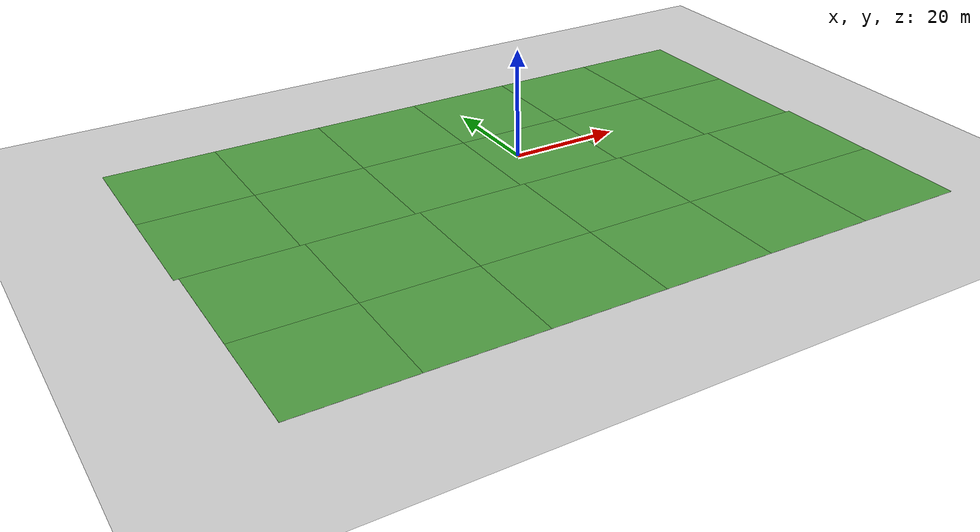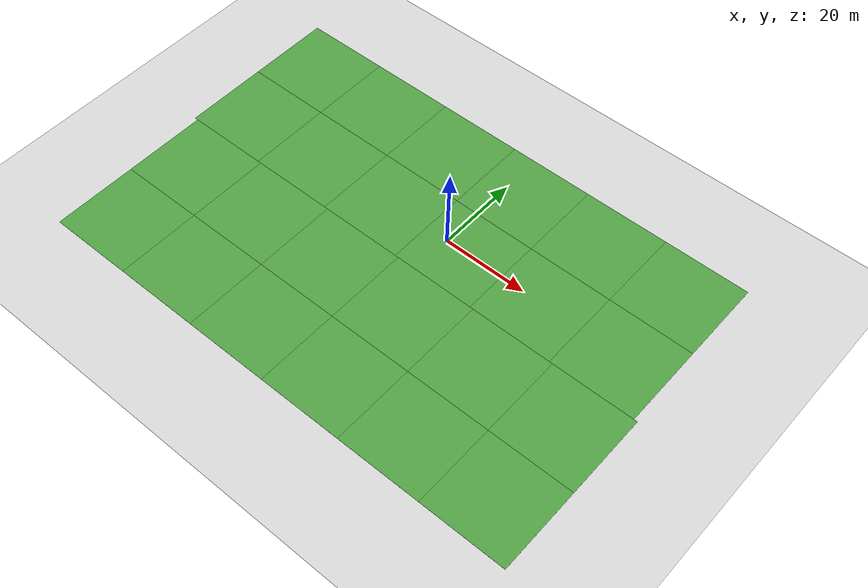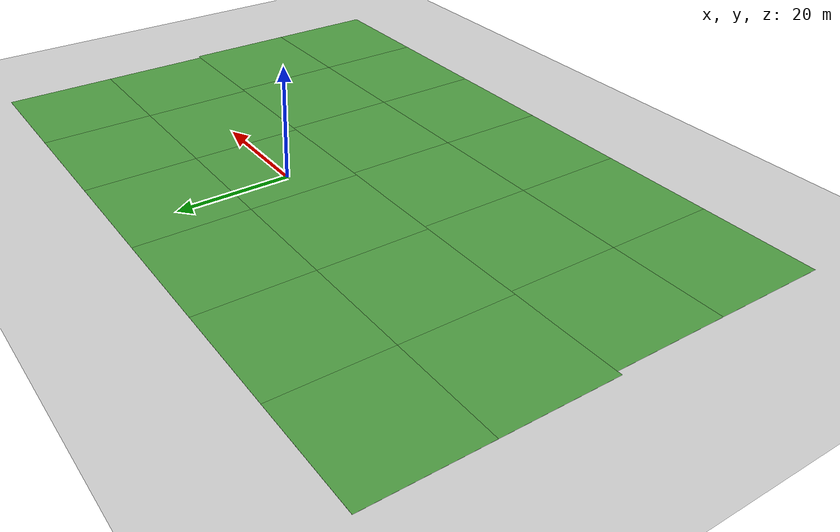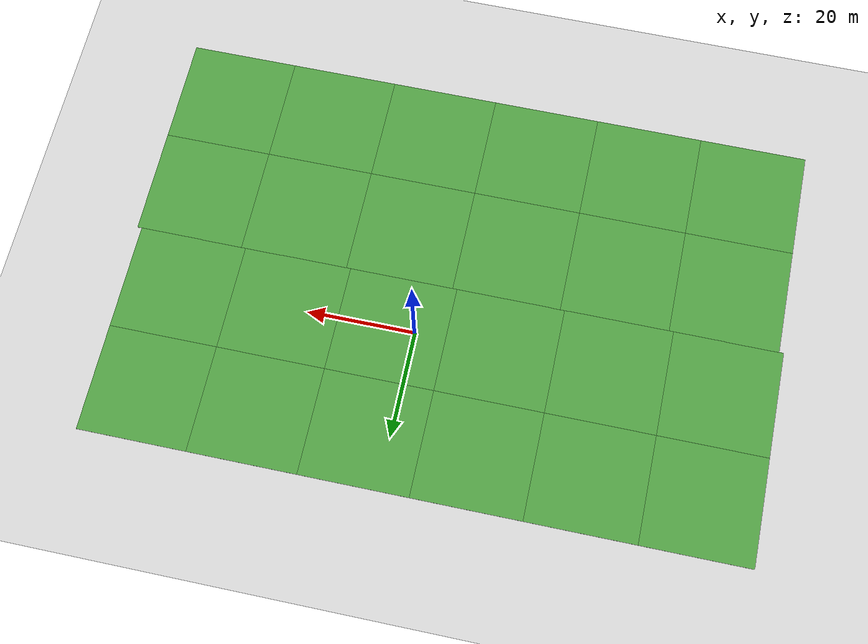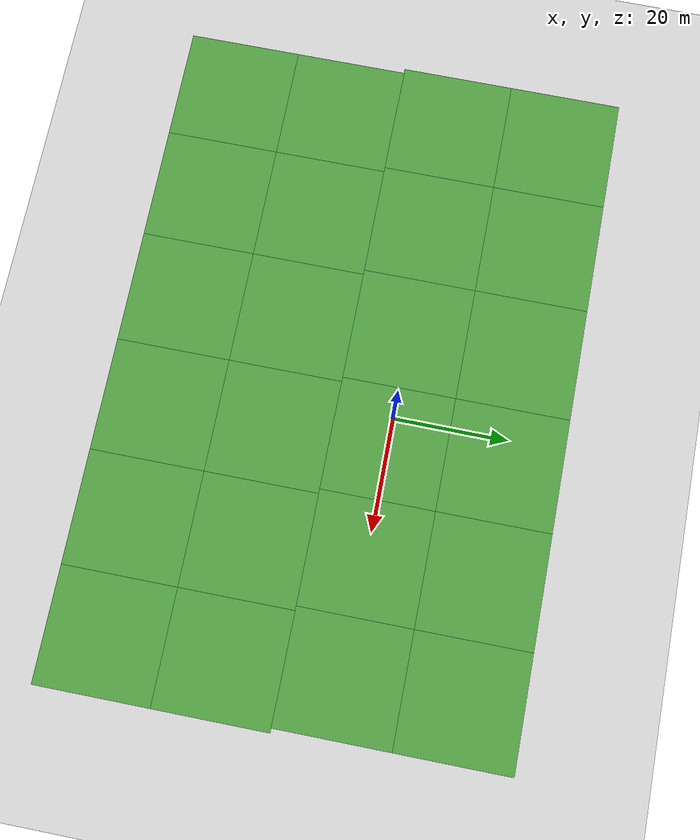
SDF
<sdf version="1.7">
 <world name="default">
  <plugin name="ros_interface_plugin" filename="librotors_gazebo_ros_interface_plugin.so"/>
  <light name="sun" type="directional">
   <pose>0 0 10 0 -0 0</pose>
   <diffuse>0.8 0.8 0.8 1</diffuse>
   <specular>0.2 0.2 0.2 1</specular>
   <attenuation>
    <range>1000</range>
    <constant>0.9</constant>
    <linear>0.01</linear>
    <quadratic>0.001</quadratic>
   </attenuation>
   <direction>-0.5 0.1 -0.9</direction>
   <spot><inner_angle>0</inner_angle><outer_angle>0</outer_angle><falloff>0</falloff></spot>
  </light>
  <model name="ground_plane">
   <static>1</static>
   <link name="link">
    <collision name="collision">
     <geometry><plane><normal>0 0 1</normal><size>100 100</size></plane></geometry>
     <surface><friction><ode><mu>100</mu><mu2>50</mu2></ode></friction></surface>
    </collision>
    <visual name="visual">
     <cast_shadows>0</cast_shadows>
     <geometry><plane><normal>0 0 1</normal><size>100 100</size></plane></geometry>
     <material>
      <script><uri>file://media/materials/scripts/gazebo.material</uri><name>Gazebo/Grey</name></script>
     </material>
    </visual>
    <velocity_decay><linear>0</linear><angular>0</angular></velocity_decay>
   </link>
  </model>
  <physics name="default_physics" default="0" type="ode">
   <max_step_size>0.001</max_step_size>
   <real_time_factor>1</real_time_factor>
   <real_time_update_rate>1000</real_time_update_rate>
  </physics>
  <scene><ambient>0.4 0.4 0.4 1</ambient><background>0.7 0.7 0.7 1</background><shadows>1</shadows></scene>
  <gravity>0 0 -9.8</gravity>
  <magnetic_field>6e-06 2.3e-05 -4.2e-05</magnetic_field>
  <atmosphere type="adiabatic"/>
  <spherical_coordinates>
   <surface_model>EARTH_WGS84</surface_model>
   <latitude_deg>0</latitude_deg>
   <longitude_deg>0</longitude_deg>
   <elevation>0</elevation>
   <heading_deg>0</heading_deg>
  </spherical_coordinates>
  <model name="grass_plane">
   <static>1</static>
   <link name="link">
    <collision name="collision">
     <geometry><plane><normal>0 0 1</normal><size>500 500</size></plane></geometry>
     <surface><friction><ode><mu>0.5</mu><mu2>0.5</mu2></ode></friction></surface>
    </collision>
    <visual name="visual_0">
     <pose>-40 -40 0 0 -0 0</pose>
     <cast_shadows>0</cast_shadows>
     <geometry><plane><normal>0 0 1</normal><size>20 20</size></plane></geometry>
     <material>
      <script>
       <uri>model://grass_plane/materials/scripts</uri>
       <uri>model://grass_plane/materials/textures</uri>
       <name>vrc/grass</name>
      </script>
     </material>
    </visual>
    <visual name="visual_1">
     <pose>-20 -40 0 0 -0 0</pose>
     <cast_shadows>0</cast_shadows>
     <geometry><plane><normal>0 0 1</normal><size>20 20</size></plane></geometry>
     <material>
      <script>
       <uri>model://grass_plane/materials/scripts</uri>
       <uri>model://grass_plane/materials/textures</uri>
       <name>vrc/grass</name>
      </script>
     </material>
    </visual>
    <visual name="visual_2">
     <pose>0 -40 0 0 -0 0</pose>
     <cast_shadows>0</cast_shadows>
     <geometry><plane><normal>0 0 1</normal><size>20 20</size></plane></geometry>
     <material>
      <script>
       <uri>model://grass_plane/materials/scripts</uri>
       <uri>model://grass_plane/materials/textures</uri>
       <name>vrc/grass</name>
      </script>
     </material>
    </visual>
    <visual name="visual_3">
     <pose>20 -40 0 0 -0 0</pose>
     <cast_shadows>0</cast_shadows>
     <geometry><plane><normal>0 0 1</normal><size>20 20</size></plane></geometry>
     <material>
      <script>
       <uri>model://grass_plane/materials/scripts</uri>
       <uri>model://grass_plane/materials/textures</uri>
       <name>vrc/grass</name>
      </script>
     </material>
    </visual>
    <visual name="visual_4">
     <pose>40 -40 0 0 -0 0</pose>
     <cast_shadows>0</cast_shadows>
     <geometry><plane><normal>0 0 1</normal><size>20 20</size></plane></geometry>
     <material>
      <script>
       <uri>model://grass_plane/materials/scripts</uri>
       <uri>model://grass_plane/materials/textures</uri>
       <name>vrc/grass</name>
      </script>
     </material>
    </visual>
    <visual name="visual_5">
     <pose>60 -40 0 0 -0 0</pose>
     <cast_shadows>0</cast_shadows>
     <geometry><plane><normal>0 0 1</normal><size>20 20</size></plane></geometry>
     <material>
      <script>
       <uri>model://grass_plane/materials/scripts</uri>
       <uri>model://grass_plane/materials/textures</uri>
       <name>vrc/grass</name>
      </script>
     </material>
    </visual>
    <visual name="visual_6">
     <pose>-40 -20 0 0 -0 0</pose>
     <cast_shadows>0</cast_shadows>
     <geometry><plane><normal>0 0 1</normal><size>20 20</size></plane></geometry>
     <material>
      <script>
       <uri>model://grass_plane/materials/scripts</uri>
       <uri>model://grass_plane/materials/textures</uri>
       <name>vrc/grass</name>
      </script>
     </material>
    </visual>
    <visual name="visual_7">
     <pose>-20 -20 0 0 -0 0</pose>
     <cast_shadows>0</cast_shadows>
     <geometry><plane><normal>0 0 1</normal><size>20 20</size></plane></geometry>
     <material>
      <script>
       <uri>model://grass_plane/materials/scripts</uri>
       <uri>model://grass_plane/materials/textures</uri>
       <name>vrc/grass</name>
      </script>
     </material>
    </visual>
    <visual name="visual_8">
     <pose>0 -20 0 0 -0 0</pose>
     <cast_shadows>0</cast_shadows>
     <geometry><plane><normal>0 0 1</normal><size>20 20</size></plane></geometry>
     <material>
      <script>
       <uri>model://grass_plane/materials/scripts</uri>
       <uri>model://grass_plane/materials/textures</uri>
       <name>vrc/grass</name>
      </script>
     </material>
    </visual>
    <visual name="visual_9">
     <pose>20 -20 0 0 -0 0</pose>
     <cast_shadows>0</cast_shadows>
     <geometry><plane><normal>0 0 1</normal><size>20 20</size></plane></geometry>
     <material>
      <script>
       <uri>model://grass_plane/materials/scripts</uri>
       <uri>model://grass_plane/materials/textures</uri>
       <name>vrc/grass</name>
      </script>
     </material>
    </visual>
    <visual name="visual_10">
     <pose>40 -20 0 0 -0 0</pose>
     <cast_shadows>0</cast_shadows>
     <geometry><plane><normal>0 0 1</normal><size>20 20</size></plane></geometry>
     <material>
      <script>
       <uri>model://grass_plane/materials/scripts</uri>
       <uri>model://grass_plane/materials/textures</uri>
       <name>vrc/grass</name>
      </script>
     </material>
    </visual>
    <visual name="visual_11">
     <pose>60 -20 0 0 -0 0</pose>
     <cast_shadows>0</cast_shadows>
     <geometry><plane><normal>0 0 1</normal><size>20 20</size></plane></geometry>
     <material>
      <script>
       <uri>model://grass_plane/materials/scripts</uri>
       <uri>model://grass_plane/materials/textures</uri>
       <name>vrc/grass</name>
      </script>
     </material>
    </visual>
   </link>
   <pose>-14.8141 -0.024505 0.01 0 -0 0</pose>
  </model>
  <model name="grass_plane_0">
   <static>1</static>
   <link name="link">
    <collision name="collision">
     <geometry><plane><normal>0 0 1</normal><size>500 500</size></plane></geometry>
     <surface><friction><ode><mu>0.5</mu><mu2>0.5</mu2></ode></friction></surface>
    </collision>
    <visual name="visual_0">
     <pose>-40 -40 0 0 -0 0</pose>
     <cast_shadows>0</cast_shadows>
     <geometry><plane><normal>0 0 1</normal><size>20 20</size></plane></geometry>
     <material>
      <script>
       <uri>model://grass_plane/materials/scripts</uri>
       <uri>model://grass_plane/materials/textures</uri>
       <name>vrc/grass</name>
      </script>
     </material>
    </visual>
    <visual name="visual_1">
     <pose>-20 -40 0 0 -0 0</pose>
     <cast_shadows>0</cast_shadows>
     <geometry><plane><normal>0 0 1</normal><size>20 20</size></plane></geometry>
     <material>
      <script>
       <uri>model://grass_plane/materials/scripts</uri>
       <uri>model://grass_plane/materials/textures</uri>
       <name>vrc/grass</name>
      </script>
     </material>
    </visual>
    <visual name="visual_2">
     <pose>0 -40 0 0 -0 0</pose>
     <cast_shadows>0</cast_shadows>
     <geometry><plane><normal>0 0 1</normal><size>20 20</size></plane></geometry>
     <material>
      <script>
       <uri>model://grass_plane/materials/scripts</uri>
       <uri>model://grass_plane/materials/textures</uri>
       <name>vrc/grass</name>
      </script>
     </material>
    </visual>
    <visual name="visual_3">
     <pose>20 -40 0 0 -0 0</pose>
     <cast_shadows>0</cast_shadows>
     <geometry><plane><normal>0 0 1</normal><size>20 20</size></plane></geometry>
     <material>
      <script>
       <uri>model://grass_plane/materials/scripts</uri>
       <uri>model://grass_plane/materials/textures</uri>
       <name>vrc/grass</name>
      </script>
     </material>
    </visual>
    <visual name="visual_4">
     <pose>40 -40 0 0 -0 0</pose>
     <cast_shadows>0</cast_shadows>
     <geometry><plane><normal>0 0 1</normal><size>20 20</size></plane></geometry>
     <material>
      <script>
       <uri>model://grass_plane/materials/scripts</uri>
       <uri>model://grass_plane/materials/textures</uri>
       <name>vrc/grass</name>
      </script>
     </material>
    </visual>
    <visual name="visual_5">
     <pose>60 -40 0 0 -0 0</pose>
     <cast_shadows>0</cast_shadows>
     <geometry><plane><normal>0 0 1</normal><size>20 20</size></plane></geometry>
     <material>
      <script>
       <uri>model://grass_plane/materials/scripts</uri>
       <uri>model://grass_plane/materials/textures</uri>
       <name>vrc/grass</name>
      </script>
     </material>
    </visual>
    <visual name="visual_6">
     <pose>-40 -20 0 0 -0 0</pose>
     <cast_shadows>0</cast_shadows>
     <geometry><plane><normal>0 0 1</normal><size>20 20</size></plane></geometry>
     <material>
      <script>
       <uri>model://grass_plane/materials/scripts</uri>
       <uri>model://grass_plane/materials/textures</uri>
       <name>vrc/grass</name>
      </script>
     </material>
    </visual>
    <visual name="visual_7">
     <pose>-20 -20 0 0 -0 0</pose>
     <cast_shadows>0</cast_shadows>
     <geometry><plane><normal>0 0 1</normal><size>20 20</size></plane></geometry>
     <material>
      <script>
       <uri>model://grass_plane/materials/scripts</uri>
       <uri>model://grass_plane/materials/textures</uri>
       <name>vrc/grass</name>
      </script>
     </material>
    </visual>
    <visual name="visual_8">
     <pose>0 -20 0 0 -0 0</pose>
     <cast_shadows>0</cast_shadows>
     <geometry><plane><normal>0 0 1</normal><size>20 20</size></plane></geometry>
     <material>
      <script>
       <uri>model://grass_plane/materials/scripts</uri>
       <uri>model://grass_plane/materials/textures</uri>
       <name>vrc/grass</name>
      </script>
     </material>
    </visual>
    <visual name="visual_9">
     <pose>20 -20 0 0 -0 0</pose>
     <cast_shadows>0</cast_shadows>
     <geometry><plane><normal>0 0 1</normal><size>20 20</size></plane></geometry>
     <material>
      <script>
       <uri>model://grass_plane/materials/scripts</uri>
       <uri>model://grass_plane/materials/textures</uri>
       <name>vrc/grass</name>
      </script>
     </material>
    </visual>
    <visual name="visual_10">
     <pose>40 -20 0 0 -0 0</pose>
     <cast_shadows>0</cast_shadows>
     <geometry><plane><normal>0 0 1</normal><size>20 20</size></plane></geometry>
     <material>
      <script>
       <uri>model://grass_plane/materials/scripts</uri>
       <uri>model://grass_plane/materials/textures</uri>
       <name>vrc/grass</name>
      </script>
     </material>
    </visual>
    <visual name="visual_11">
     <pose>60 -20 0 0 -0 0</pose>
     <cast_shadows>0</cast_shadows>
     <geometry><plane><normal>0 0 1</normal><size>20 20</size></plane></geometry>
     <material>
      <script>
       <uri>model://grass_plane/materials/scripts</uri>
       <uri>model://grass_plane/materials/textures</uri>
       <name>vrc/grass</name>
      </script>
     </material>
    </visual>
   </link>
   <pose>-15.6244 39.9229 0.01 0 -0 0</pose>
  </model>
  <audio><device>default</device></audio>
 </world>
</sdf>
